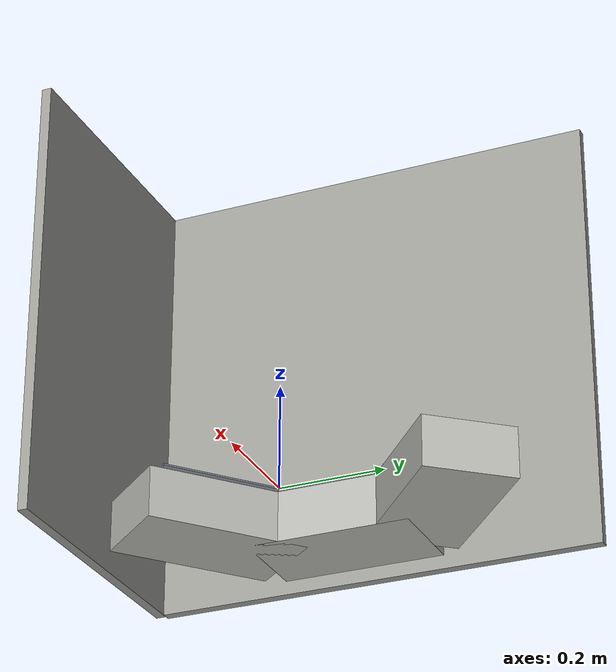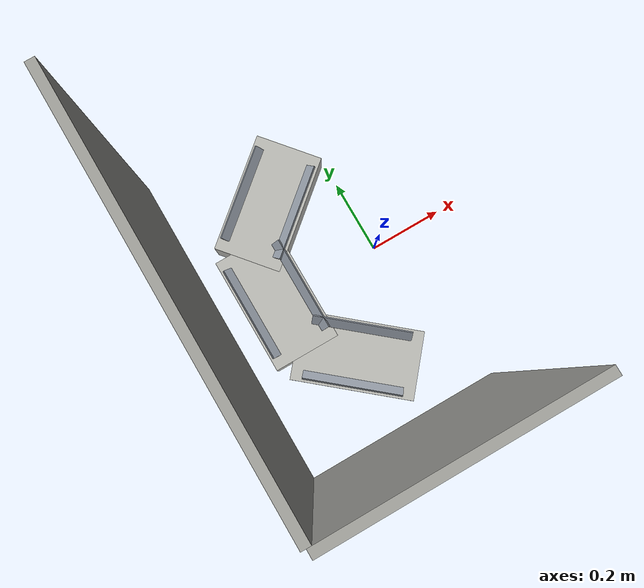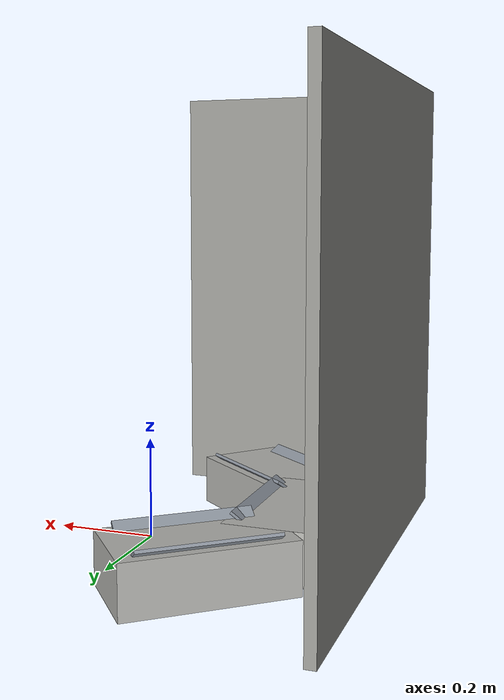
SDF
<?xml version="1.0"?>
<sdf version="1.9">
  <model name="shelf">
    <static>true</static>
    <link name="link">
      <!-- ============ slot 1: bottle, azimuth 130 deg ============ -->
      <collision name="ped1"><pose>-0.1928 0.2298 0.0500 0 0 2.2689</pose>
        <geometry><box><size>0.18 0.32 0.10</size></box></geometry>
        <surface><friction><ode><mu>1.0</mu><mu2>1.0</mu2></ode></friction></surface></collision>
      <visual name="ped1v"><pose>-0.1928 0.2298 0.0500 0 0 2.2689</pose>
        <geometry><box><size>0.18 0.32 0.10</size></box></geometry>
        <material><ambient>0.72 0.72 0.70 1</ambient><diffuse>0.72 0.72 0.70 1</diffuse></material></visual>
      <!-- chamfered barriers, outer then inner. Low friction so the object slides in. -->
      <collision name="ramp1o"><pose>-0.2391 0.2849 0.1047 0 -0.6109 2.2689</pose>
        <geometry><box><size>0.025 0.260 0.006</size></box></geometry>
        <surface><friction><ode><mu>0.30</mu><mu2>0.30</mu2></ode></friction></surface></collision>
      <visual name="ramp1ov"><pose>-0.2391 0.2849 0.1047 0 -0.6109 2.2689</pose>
        <geometry><box><size>0.025 0.260 0.006</size></box></geometry>
        <material><ambient>0.55 0.58 0.62 1</ambient><diffuse>0.55 0.58 0.62 1</diffuse></material></visual>
      <collision name="ramp1i"><pose>-0.1466 0.1747 0.1047 0 0.6109 2.2689</pose>
        <geometry><box><size>0.025 0.260 0.006</size></box></geometry>
        <surface><friction><ode><mu>0.30</mu><mu2>0.30</mu2></ode></friction></surface></collision>
      <visual name="ramp1iv"><pose>-0.1466 0.1747 0.1047 0 0.6109 2.2689</pose>
        <geometry><box><size>0.025 0.260 0.006</size></box></geometry>
        <material><ambient>0.55 0.58 0.62 1</ambient><diffuse>0.55 0.58 0.62 1</diffuse></material></visual>

      <!-- ============ slot 2: can, azimuth 180 deg ============ -->
      <collision name="ped2"><pose>-0.3000 0.0000 0.0500 0 0 3.1416</pose>
        <geometry><box><size>0.18 0.32 0.10</size></box></geometry>
        <surface><friction><ode><mu>1.0</mu><mu2>1.0</mu2></ode></friction></surface></collision>
      <visual name="ped2v"><pose>-0.3000 0.0000 0.0500 0 0 3.1416</pose>
        <geometry><box><size>0.18 0.32 0.10</size></box></geometry>
        <material><ambient>0.72 0.72 0.70 1</ambient><diffuse>0.72 0.72 0.70 1</diffuse></material></visual>
      <collision name="ramp2o"><pose>-0.3720 0.0000 0.1047 0 -0.6109 3.1416</pose>
        <geometry><box><size>0.025 0.260 0.006</size></box></geometry>
        <surface><friction><ode><mu>0.30</mu><mu2>0.30</mu2></ode></friction></surface></collision>
      <visual name="ramp2ov"><pose>-0.3720 0.0000 0.1047 0 -0.6109 3.1416</pose>
        <geometry><box><size>0.025 0.260 0.006</size></box></geometry>
        <material><ambient>0.55 0.58 0.62 1</ambient><diffuse>0.55 0.58 0.62 1</diffuse></material></visual>
      <collision name="ramp2i"><pose>-0.2280 0.0000 0.1047 0 0.6109 3.1416</pose>
        <geometry><box><size>0.025 0.260 0.006</size></box></geometry>
        <surface><friction><ode><mu>0.30</mu><mu2>0.30</mu2></ode></friction></surface></collision>
      <visual name="ramp2iv"><pose>-0.2280 0.0000 0.1047 0 0.6109 3.1416</pose>
        <geometry><box><size>0.025 0.260 0.006</size></box></geometry>
        <material><ambient>0.55 0.58 0.62 1</ambient><diffuse>0.55 0.58 0.62 1</diffuse></material></visual>

      <!-- ============ slot 3: box, azimuth 230 deg ============ -->
      <collision name="ped3"><pose>-0.1928 -0.2298 0.0500 0 0 4.0143</pose>
        <geometry><box><size>0.18 0.32 0.10</size></box></geometry>
        <surface><friction><ode><mu>1.0</mu><mu2>1.0</mu2></ode></friction></surface></collision>
      <visual name="ped3v"><pose>-0.1928 -0.2298 0.0500 0 0 4.0143</pose>
        <geometry><box><size>0.18 0.32 0.10</size></box></geometry>
        <material><ambient>0.72 0.72 0.70 1</ambient><diffuse>0.72 0.72 0.70 1</diffuse></material></visual>
      <collision name="ramp3o"><pose>-0.2391 -0.2849 0.1047 0 -0.6109 4.0143</pose>
        <geometry><box><size>0.025 0.260 0.006</size></box></geometry>
        <surface><friction><ode><mu>0.30</mu><mu2>0.30</mu2></ode></friction></surface></collision>
      <visual name="ramp3ov"><pose>-0.2391 -0.2849 0.1047 0 -0.6109 4.0143</pose>
        <geometry><box><size>0.025 0.260 0.006</size></box></geometry>
        <material><ambient>0.55 0.58 0.62 1</ambient><diffuse>0.55 0.58 0.62 1</diffuse></material></visual>
      <collision name="ramp3i"><pose>-0.1466 -0.1747 0.1047 0 0.6109 4.0143</pose>
        <geometry><box><size>0.025 0.260 0.006</size></box></geometry>
        <surface><friction><ode><mu>0.30</mu><mu2>0.30</mu2></ode></friction></surface></collision>
      <visual name="ramp3iv"><pose>-0.1466 -0.1747 0.1047 0 0.6109 4.0143</pose>
        <geometry><box><size>0.025 0.260 0.006</size></box></geometry>
        <material><ambient>0.55 0.58 0.62 1</ambient><diffuse>0.55 0.58 0.62 1</diffuse></material></visual>

      <!-- ============ walls: the LiDAR pose reference ============ -->
          <collision name="backwall"><pose>-0.46 0 0.45 0 0 0</pose>
        <geometry><box><size>0.02 0.90 0.90</size></box></geometry></collision>
      <visual name="backwallv"><pose>-0.46 0 0.45 0 0 0</pose>
        <geometry><box><size>0.02 0.90 0.90</size></box></geometry>
        <material><ambient>0.62 0.62 0.60 1</ambient><diffuse>0.62 0.62 0.60 1</diffuse></material></visual>
      <collision name="sidewall"><pose>-0.18 -0.46 0.45 0 0 0</pose>
        <geometry><box><size>0.56 0.02 0.90</size></box></geometry></collision>
      <visual name="sidewallv"><pose>-0.18 -0.46 0.45 0 0 0</pose>
        <geometry><box><size>0.56 0.02 0.90</size></box></geometry>
        <material><ambient>0.62 0.62 0.60 1</ambient><diffuse>0.62 0.62 0.60 1</diffuse></material></visual>
    </link>
  </model>
</sdf>
